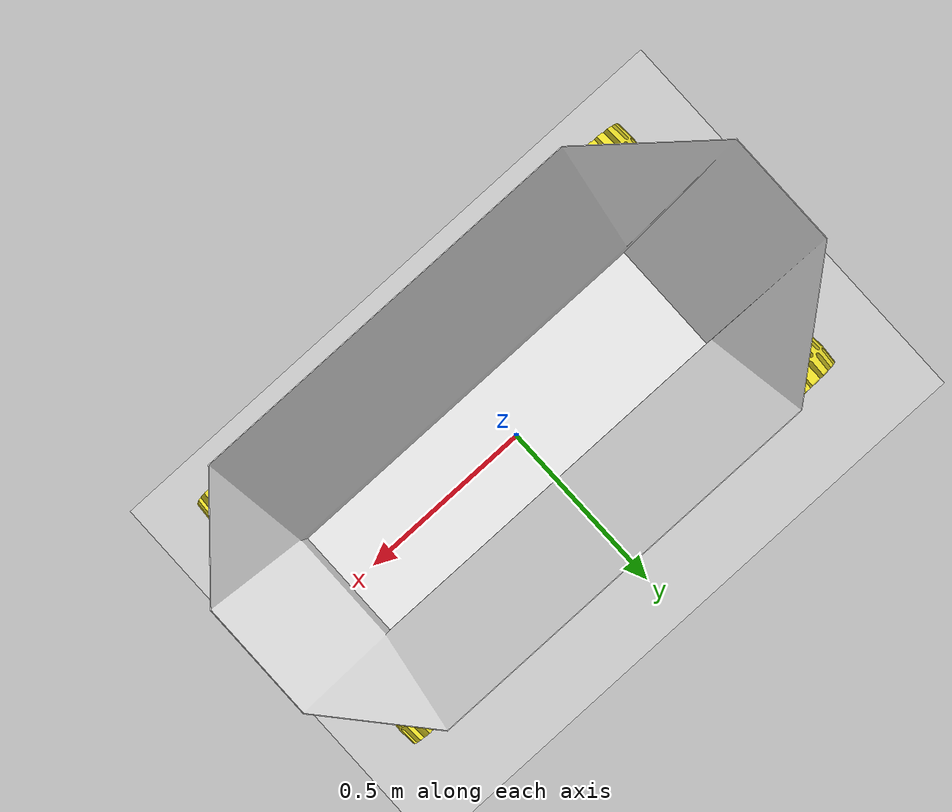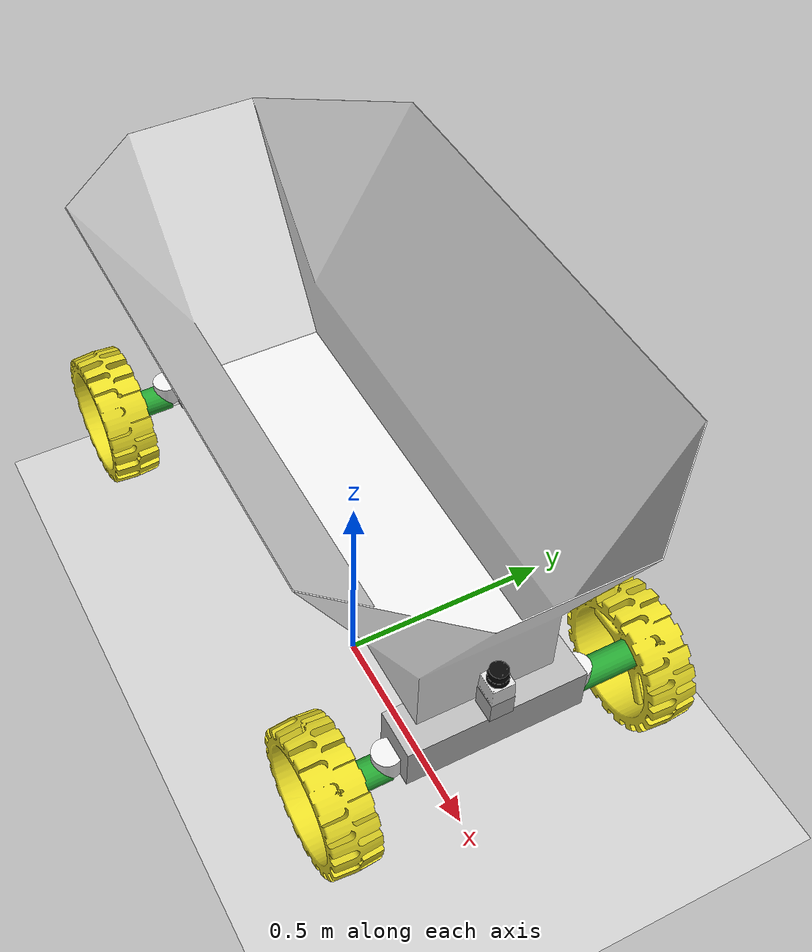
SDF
<?xml version="1.0" ?>
<sdf version="1.4">
    <world name="cubic">
        <physics type="ode">
            <gravity>0 0 -9.81</gravity>
            <ode>
                <solver>
                    <type>quick</type>
                    <iters>40</iters>
                    <sor>1.0</sor>
                </solver>
                <constraints>
                    <cfm>0.0</cfm>
                    <erp>0.2</erp>
                    <contact_max_correcting_vel>100.0</contact_max_correcting_vel>
                    <contact_surface_layer>0.0</contact_surface_layer>
                </constraints>
            </ode>
            <max_step_size>0.001</max_step_size>
        </physics>
        <!-- A global light source -->
        <include>
            <uri>model://sun</uri>
        </include>
        <!-- A ground plane -->
        <include>
            <uri>model://ground_plane</uri>
            <collision>
                <surface>
                    <friction>
                        <ode>
                            <mu>0.1</mu>
                            <mu2>0.1</mu2>
                            <slip1>0.8</slip1>
                            <slip2>0.8</slip2>
                        </ode>
                    </friction>
                </surface>
                <contact>
					<ode>
						<soft_cfm>0.005</soft_cfm>
					</ode>
                </contact>
			</collision>
        </include>
        <!-- Robots -->
		<include>
			<uri>model://elias</uri>
			<pose>0 0 0.5 0 0 0</pose>
		</include>
        <plugin name="clock" filename="libClockServerPlugin.so" />
    </world>
</sdf>

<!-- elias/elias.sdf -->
<sdf version="1.4">
    <model name="elias">
        <pose>0 0 0.1961 0 0 0</pose>
        <static>false</static>
        <link name="chassis">
            <inertial>
                <mass>36.0</mass>
                <inertia>
                    <ixx>1.0</ixx>
                    <ixy>0.0</ixy>
                    <ixz>0.0</ixz>
                    <iyy>1.0</iyy>
                    <iyz>0.0</iyz>
                    <izz>1.0</izz>
                </inertia>
            </inertial>
            <velocity_decay>
				<linear>0.0</linear>
				<angular>0.01</angular>
            </velocity_decay>
            <self_collide>true</self_collide>
            <collision name="main_frame">
                <pose>0 0 0 0 0 0</pose>
                <geometry>
                    <box>
                        <size>1.05 0.1 0.1</size>
                    </box>
                </geometry>
            </collision>
            <collision name="front_axle">
                <pose>0.53 0 0 0 0 0</pose>
                <geometry>
                    <box>
                        <size>0.1 0.38 0.1</size>
                    </box>
                </geometry>
            </collision>
            <collision name="bucket">
				<pose>0.53 0 0.15 1.57 0 3.14</pose>
                <geometry>
                    <mesh>
                        <uri>model://elias/meshes/bucket.dae</uri>
                    </mesh>
                </geometry>
            </collision>
            <collision name="lidar_platform">
                <pose>0.56 0 0.075 0 0 0</pose>
                <geometry>
                    <box>
                        <size>0.05 0.05 0.05</size>
                    </box>
                </geometry>
            </collision>
            <visual name="main_frame">
                <pose>0 0 0 0 0 0</pose>
                <geometry>
                    <box>
                        <size>0.96 0.1 0.1</size>
                    </box>
                </geometry>
                <material>
                    <script>
                        <uri>model://elias/materials/scripts/elias.material</uri>
                        <uri>model://elias/materials/textures/steel.jpg</uri>
                        <name>Lunabotics/Steel</name>
                    </script>
                </material>
            </visual>
            <visual name="front_axle">
                <pose>0.53 0 0 0 0 0</pose>
                <geometry>
                    <box>
                        <size>0.1 0.38 0.1</size>
                    </box>
                </geometry>
                <material>
                    <script>
                        <uri>model://elias/materials/scripts/elias.material</uri>
                        <uri>model://elias/materials/textures/steel.jpg</uri>
                        <name>Lunabotics/Steel</name>
                    </script>
                </material>
            </visual>
            <visual name="bucket">
				<pose>0.53 0 0.15 1.57 0 3.14</pose>
                <geometry>
                    <mesh>
                        <uri>model://elias/meshes/bucket.dae</uri>
                    </mesh>
                </geometry>
                <material>
                    <script>
                        <uri>file://media/materials/scripts/gazebo.material</uri>
                        <name>Gazebo/White</name>
                    </script>
                </material>
            </visual>
            <visual name="lidar_platform">
                <pose>0.56 0 0.075 0 0 0</pose>
                <geometry>
                    <box>
                        <size>0.05 0.05 0.05</size>
                    </box>
                </geometry>
                <material>
                    <script>
                        <uri>model://elias/materials/scripts/elias.material</uri>
                        <uri>model://elias/materials/textures/steel.jpg</uri>
                        <name>Lunabotics/Steel</name>
                    </script>
                </material>
            </visual>
            <velocity_decay>
                <linear>0</linear>
                <angular>0</angular>
            </velocity_decay>
        </link>
        <link name="rear_axle">
			<pose>-0.53 0 0 0 0 0</pose>
            <velocity_decay>
				<linear>0.0</linear>
				<angular>0.01</angular>
            </velocity_decay>
            <self_collide>true</self_collide>
            <collision name="collision">
                <geometry>
                    <box>
                        <size>0.1 0.38 0.1</size>
                    </box>
                </geometry>
            </collision>
			<pose>-0.53 0 0 0 0 0</pose>
            <visual name="visual">
                <geometry>
                    <box>
                        <size>0.1 0.38 0.1</size>
                    </box>
                </geometry>
                <material>
                    <script>
                        <uri>model://elias/materials/scripts/elias.material</uri>
                        <uri>model://elias/materials/textures/steel.jpg</uri>
                        <name>Lunabotics/Steel</name>
                    </script>
                </material>
            </visual>
        </link>

        <include>
            <uri>model://wheel</uri>
			<name>left_front_wheel</name>
            <pose>0.53 0.335 -0.0466 0 1.57 1.57</pose>
        </include>

        <include>
            <uri>model://wheel</uri>
			<name>right_front_wheel</name>
            <pose>0.53 -0.335 -0.0466 0 1.57 1.57</pose>
        </include>

        <include>
            <uri>model://wheel</uri>
			<name>left_rear_wheel</name>
            <pose>-0.53 0.335 -0.0466 0 1.57 1.57</pose>
        </include>

        <include>
            <uri>model://wheel</uri>
			<name>right_rear_wheel</name>
            <pose>-0.53 -0.335 -0.0466 0 1.57 1.57</pose>
        </include>

        <include>
            <uri>model://connector</uri>
			<name>left_front_connector</name>
            <pose>0.53 0.27 -0.0466 0 0 0</pose>
        </include>

        <include>
            <uri>model://connector</uri>
			<name>right_front_connector</name>
            <pose>0.53 -0.27 -0.0466 0 0 3.14</pose>
        </include>

        <include>
            <uri>model://connector</uri>
			<name>left_rear_connector</name>
            <pose>-0.53 0.27 -0.0466 0 0 0</pose>
        </include>

        <include>
            <uri>model://connector</uri>
			<name>right_rear_connector</name>
            <pose>-0.53 -0.27 -0.0466 0 0 3.14</pose>
        </include>

        <joint type="revolute" name="left_front_driving_hinge">
            <pose>0 0 0 0 0 0</pose>
            <axis>
                <xyz>0 1 0</xyz>
            </axis>
            <physics>
				<ode>
					<max_force>22</max_force>
					<velocity>60</velocity>
				</ode>
            </physics>
            <parent>left_front_connector::link</parent>
            <child>left_front_wheel::link</child>
        </joint>
        <joint type="revolute" name="right_front_driving_hinge">
            <pose>0 0 0 0 0 0</pose>
            <axis>
                <xyz>0 1 0</xyz>
            </axis>
            <physics>
				<ode>
					<max_force>22</max_force>
					<velocity>60</velocity>
				</ode>
            </physics>
            <parent>right_front_connector::link</parent>
            <child>right_front_wheel::link</child>
        </joint>
        <joint type="revolute" name="left_rear_driving_hinge">
            <pose>0 0 0 0 0 0</pose>
            <axis>
                <xyz>0 1 0</xyz>
            </axis>
            <physics>
				<ode>
					<max_force>22</max_force>
					<velocity>60</velocity>
				</ode>
            </physics>
            <parent>left_rear_connector::link</parent>
            <child>left_rear_wheel::link</child>
        </joint>
        <joint type="revolute" name="right_rear_driving_hinge">
            <pose>0 0 0 0 0 0</pose>
            <axis>
                <xyz>0 1 0</xyz>
            </axis>
            <physics>
				<ode>
					<max_force>22</max_force>
					<velocity>60</velocity>
				</ode>
            </physics>
            <parent>right_rear_connector::link</parent>
            <child>right_rear_wheel::link</child>
        </joint>

        <joint type="revolute" name="left_front_steering_hinge">
            <pose>0 -0.065 0.02 0 0 0</pose>
            <axis>
                <xyz>0 0 1</xyz>
                <dynamics>
					<damping>0.0</damping>
					<friction>1000</friction>
                </dynamics>
                <limit>
                    <lower>-1.57</lower>
                    <upper>1.57</upper>
                </limit>
            </axis>
            <physics>
				<ode>
					<cfm>0.0</cfm>
					<bounce>0.01</bounce>
					<max_force>16.5</max_force>
					<velocity>40</velocity>
					<limit>
						<cfm>0.0</cfm>
						<erp>0.0</erp>
					</limit>
				</ode>
            </physics>
            <parent>chassis</parent>
            <child>left_front_connector::link</child>
        </joint>
        <joint type="revolute" name="right_front_steering_hinge">
            <pose>0 -0.065 0.02 0 0 0</pose>
            <axis>
                <xyz>0 0 1</xyz>
                <dynamics>
					<damping>0.0</damping>
					<friction>1000</friction>
                </dynamics>
                <limit>
                    <lower>-1.57</lower>
                    <upper>1.57</upper>
                </limit>
            </axis>
            <physics>
				<ode>
					<cfm>0.0</cfm>
					<bounce>0.01</bounce>
					<max_force>16.5</max_force>
					<velocity>40</velocity>
				</ode>
            </physics>
            <parent>chassis</parent>
            <child>right_front_connector::link</child>
        </joint>
        <joint type="revolute" name="left_rear_steering_hinge">
            <pose>0 -0.065 0.02 0 0 0</pose>
            <axis>
                <xyz>0 0 1</xyz>
                <dynamics>
					<damping>0.0</damping>
					<friction>1000</friction>
                </dynamics>
                <limit>
                    <lower>-1.57</lower>
                    <upper>1.57</upper>
                </limit>
            </axis>
            <physics>
				<ode>
					<cfm>0.0</cfm>
					<bounce>0.01</bounce>
					<max_force>16.5</max_force>
					<velocity>40</velocity>
				</ode>
            </physics>
            <parent>rear_axle</parent>
            <child>left_rear_connector::link</child>
        </joint>
        <joint type="revolute" name="right_rear_steering_hinge">
            <pose>0 -0.065 0.02 0 0 0</pose>
            <axis>
                <xyz>0 0 1</xyz>
                <dynamics>
					<damping>0.0</damping>
					<friction>1000</friction>
                </dynamics>
                <limit>
                    <lower>-1.57</lower>
                    <upper>1.57</upper>
                </limit>
            </axis>
            <physics>
				<ode>
					<cfm>0.0</cfm>
					<bounce>0.01</bounce>
					<max_force>16.5</max_force>
					<velocity>40</velocity>
				</ode>
            </physics>
            <parent>rear_axle</parent>
            <child>right_rear_connector::link</child>
        </joint>
        <joint type="revolute" name="rear_axle_pivot">
            <pose>0.05 0 0 0 0 0</pose>
            <axis>
                <xyz>1 0 0</xyz>
                <limit>
                    <lower>-0.52</lower>
                    <upper>0.52</upper>
                </limit>
            </axis>
            <parent>chassis</parent>
            <child>rear_axle</child>
        </joint>
        <include>
            <uri>model://hokuyo</uri>
            <pose>0.56 0 0.135 0 0 0</pose>
        </include>
        <joint name="hokuyo_joint" type="revolute">
            <child>hokuyo::link</child>
            <parent>chassis</parent>
            <axis>
                <xyz>0 0 1</xyz>
                <limit>
                    <upper>0</upper>
                    <lower>0</lower>
                </limit>
            </axis>
        </joint>
        <plugin name="all_wheel_steering_plugin" filename="libAllWheelSteeringPlugin.so" />
        <plugin name="odometry_plugin" filename="libLunaboticsOdometryPlugin.so" />
        <plugin name="transform_plugin" filename="libTransformServerPlugin.so" />
    </model>
</sdf>

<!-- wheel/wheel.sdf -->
<sdf version="1.4">
    <model name="wheel">
		<link name="link">
            <inertial>
                <mass>6.64</mass>
                <inertia>
                    <ixx>0.0599</ixx>
                    <ixy>0.0</ixy>
                    <ixz>0.0</ixz>
                    <iyy>0.0599</iyy>
                    <iyz>0.0</iyz>
                    <izz>0.1197</izz>
                </inertia>
            </inertial>
            <velocity_decay>
				<linear>0.0</linear>
				<angular>0.01</angular>
            </velocity_decay>
            <self_collide>true</self_collide>
            <collision name="collision">
                <geometry>
                    <cylinder>
                        <radius>0.1495</radius>
                        <length>0.1</length>
                    </cylinder>
                </geometry>
                <surface>
                    <friction>
                        <ode>
                            <mu>0.5</mu>
                            <mu2>0.5</mu2>
                            <fdir1>1 0 0</fdir1>
                            <slip1>0.2</slip1>
                            <slip2>0.2</slip2>
                        </ode>
                    </friction>
	                <contact>
						<ode>
							<soft_cfm>0.005</soft_cfm>
						</ode>
	                </contact>
                </surface>
            </collision>
            <visual name="visual">
                <geometry>
                    <mesh>
                        <uri>model://wheel/meshes/wheel.dae</uri>
                    </mesh>
                </geometry>
                <material>
                    <script>
                        <uri>file://media/materials/scripts/gazebo.material</uri>
                        <name>Gazebo/Yellow</name>
                    </script>
                </material>
            </visual>
            <velocity_decay>
                <linear>0</linear>
                <angular>0</angular>
            </velocity_decay>
        </link>
	</model>
</sdf>

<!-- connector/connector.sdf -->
<sdf version="1.4">
    <model name="connector">
        <link name="link">
            <inertial>
                <mass>3.44</mass>
                <inertia>
                    <ixx>0.0</ixx>
                    <ixy>0.0</ixy>
                    <ixz>0.0</ixz>
                    <iyy>0.149</iyy>
                    <iyz>0.0</iyz>
                    <izz>0.149</izz>
                </inertia>
            </inertial>
            <collision name="vertical">
                <pose>0 -0.065 0.0233 0 0 0</pose>
                <geometry>
                    <cylinder>
                        <radius>0.03</radius>
                        <length>0.0466</length>
                    </cylinder>
                </geometry>
            </collision>
            <collision name="horizontal">
                <pose>0 0 0 1.57 0 0</pose>
                <geometry>
                    <cylinder>
                        <radius>0.03</radius>
                        <length>0.13</length>
                    </cylinder>
                </geometry>
            </collision>
            <visual name="vertical">
                <pose>0 -0.065 0.0233 0 0 0</pose>
                <geometry>
                    <cylinder>
                        <radius>0.03</radius>
                        <length>0.0466</length>
                    </cylinder>
                </geometry>
                <material>
                    <script>
                        <uri>file://media/materials/scripts/gazebo.material</uri>
                        <name>Gazebo/White</name>
                    </script>
                </material>
            </visual>
            <visual name="horizontal">
                <pose>0 0 0 1.57 0 0</pose>
                <geometry>
                    <cylinder>
                        <radius>0.03</radius>
                        <length>0.13</length>
                    </cylinder>
                </geometry>
                <material>
                    <script>
                        <uri>file://media/materials/scripts/gazebo.material</uri>
                        <name>Gazebo/Green</name>
                    </script>
                </material>
            </visual>
            <velocity_decay>
                <linear>0</linear>
                <angular>0</angular>
            </velocity_decay>
        </link>
	</model>
</sdf>

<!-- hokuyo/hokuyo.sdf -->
<sdf version="1.4">
    <model name="hokuyo">
        <pose>0 0 0.035 0 0 0</pose>
        <link name="link">
            <inertial>
                <mass>2</mass>
                <inertia>
                    <ixx>1.0</ixx>
                    <ixy>0.0</ixy>
                    <ixz>0.0</ixz>
                    <iyy>1.0</iyy>
                    <iyz>0.0</iyz>
                    <izz>1.0</izz>
                </inertia>
            </inertial>
            <visual name="visual">
                <geometry>
                    <mesh>
                        <uri>model://hokuyo/meshes/hokuyo.dae</uri>
                    </mesh>
                </geometry>
            </visual>
            <collision name="collision-base">
                <pose>0 0 -0.0145 0 0 0</pose>
                <geometry>
                    <box>
                        <size>0.05 0.05 0.041</size>
                    </box>
                </geometry>
            </collision>
            <collision name="collision-top">
                <pose>0 0 0.0205 0 0 0</pose>
                <geometry>
                    <cylinder>
                        <radius>0.021</radius>
                        <length>0.029</length>
                    </cylinder>
                </geometry>
            </collision>
            <sensor name="laser" type="ray">
                <pose>0.01 0 0.0175 0 -0 0</pose>
                <ray>
                    <scan>
                        <horizontal>
                            <samples>180</samples>
                            <resolution>1</resolution>
                            <min_angle>-1.57</min_angle>
                            <max_angle>1.57</max_angle>
                        </horizontal>
                    </scan>
                    <range>
                        <min>0.08</min>
                        <max>10</max>
                        <resolution>0.01</resolution>
                    </range>
                </ray>
                <plugin name="laser" filename="libLunaboticsLidarPlugin.so" />
                <always_on>1</always_on>
                <update_rate>30</update_rate>
                <visualize>true</visualize>
            </sensor>
        </link>
    </model>
</sdf>
